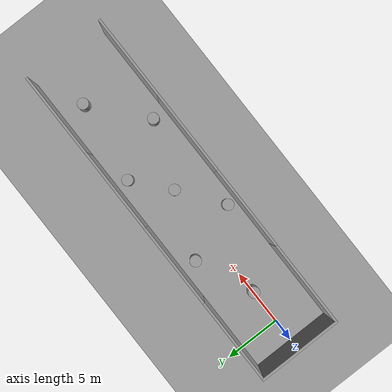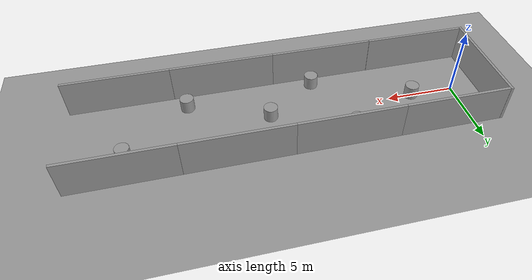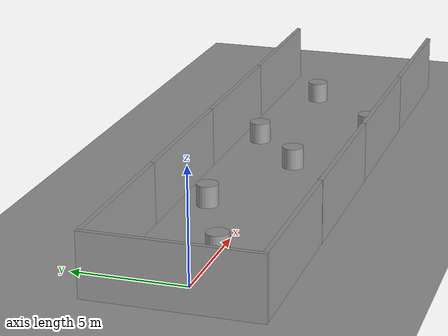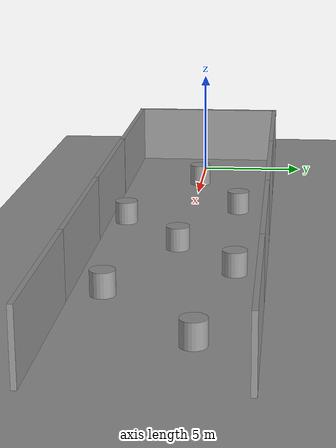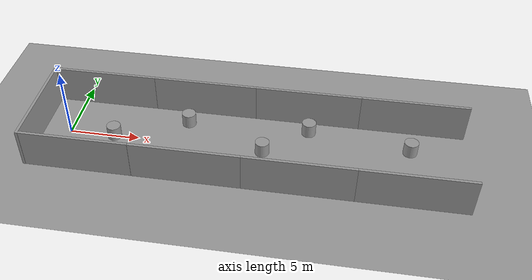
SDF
<sdf version="1.6">
 <world name="default">
  <light name="sun" type="directional">
   <pose>0 0 10 0 -0 0</pose>
   <diffuse>0.8 0.8 0.8 1</diffuse>
   <specular>0.1 0.1 0.1 1</specular>
   <attenuation>
    <range>1000</range>
    <constant>0.9</constant>
    <linear>0.01</linear>
    <quadratic>0.001</quadratic>
   </attenuation>
   <direction>-0.5 0.5 -1</direction>
  </light>
  <gravity>0 0 -9.8</gravity>
  <magnetic_field>6e-06 2.3e-05 -4.2e-05</magnetic_field>
  <atmosphere type="adiabatic"/>
  <physics name="default_physics" default="0" type="ode">
   <max_step_size>0.001</max_step_size>
   <real_time_factor>1</real_time_factor>
   <real_time_update_rate>1000</real_time_update_rate>
  </physics>
  <scene><ambient>0.4 0.4 0.4 1</ambient><background>0.7 0.7 0.7 1</background><shadows>1</shadows></scene>
  <spherical_coordinates>
   <surface_model>EARTH_WGS84</surface_model>
   <latitude_deg>0</latitude_deg>
   <longitude_deg>0</longitude_deg>
   <elevation>0</elevation>
   <heading_deg>0</heading_deg>
  </spherical_coordinates>
  <model name="grey_wall">
   <static>1</static>
   <link name="link">
    <pose>0 0 1.4 0 -0 0</pose>
    <collision name="collision"><geometry><box><size>7.5 0.2 2.8</size></box></geometry></collision>
    <visual name="visual">
     <cast_shadows>0</cast_shadows>
     <geometry><box><size>7.5 0.2 2.8</size></box></geometry>
     <material>
      <script>
       <uri>model://grey_wall/materials/scripts</uri>
       <uri>model://grey_wall/materials/textures</uri>
       <name>vrc/grey_wall</name>
      </script>
     </material>
    </visual>
   </link>
   <pose>1.74277 3.59908 0 0 -0 0</pose>
  </model>
  <model name="grey_wall_0">
   <static>1</static>
   <link name="link">
    <pose>0 0 1.4 0 -0 0</pose>
    <collision name="collision"><geometry><box><size>7.5 0.2 2.8</size></box></geometry></collision>
    <visual name="visual">
     <cast_shadows>0</cast_shadows>
     <geometry><box><size>7.5 0.2 2.8</size></box></geometry>
     <material>
      <script>
       <uri>model://grey_wall/materials/scripts</uri>
       <uri>model://grey_wall/materials/textures</uri>
       <name>vrc/grey_wall</name>
      </script>
     </material>
    </visual>
   </link>
   <pose>1.7816 -3.68174 0 0 -0 0</pose>
  </model>
  <model name="ground_plane_0">
   <static>1</static>
   <link name="link">
    <collision name="collision">
     <geometry><plane><normal>0 0 1</normal><size>100 100</size></plane></geometry>
     <surface><friction><ode><mu>100</mu><mu2>50</mu2></ode></friction></surface>
    </collision>
    <visual name="visual">
     <cast_shadows>0</cast_shadows>
     <geometry><plane><normal>0 0 1</normal><size>100 100</size></plane></geometry>
     <material>
      <script><uri>file://media/materials/scripts/gazebo.material</uri><name>Gazebo/Grey</name></script>
     </material>
    </visual>
   </link>
   <pose>-11.2455 -1.12521 0 0 -0 0</pose>
  </model>
  <model name="grey_wall_4">
   <static>1</static>
   <link name="link">
    <pose>0 0 1.4 0 -0 0</pose>
    <collision name="collision"><geometry><box><size>7.5 0.2 2.8</size></box></geometry></collision>
    <visual name="visual">
     <cast_shadows>0</cast_shadows>
     <geometry><box><size>7.5 0.2 2.8</size></box></geometry>
     <material>
      <script>
       <uri>model://grey_wall/materials/scripts</uri>
       <uri>model://grey_wall/materials/textures</uri>
       <name>vrc/grey_wall</name>
      </script>
     </material>
    </visual>
   </link>
   <pose>9.23902 3.60144 0 0 -0 0</pose>
  </model>
  <model name="grey_wall_5">
   <static>1</static>
   <link name="link">
    <pose>0 0 1.4 0 -0 0</pose>
    <collision name="collision"><geometry><box><size>7.5 0.2 2.8</size></box></geometry></collision>
    <visual name="visual">
     <cast_shadows>0</cast_shadows>
     <geometry><box><size>7.5 0.2 2.8</size></box></geometry>
     <material>
      <script>
       <uri>model://grey_wall/materials/scripts</uri>
       <uri>model://grey_wall/materials/textures</uri>
       <name>vrc/grey_wall</name>
      </script>
     </material>
    </visual>
   </link>
   <pose>9.29035 -3.69084 0 0 -0 0</pose>
  </model>
  <model name="grey_wall_6">
   <static>1</static>
   <link name="link">
    <pose>0 0 1.4 0 -0 0</pose>
    <collision name="collision"><geometry><box><size>7.5 0.2 2.8</size></box></geometry></collision>
    <visual name="visual">
     <cast_shadows>0</cast_shadows>
     <geometry><box><size>7.5 0.2 2.8</size></box></geometry>
     <material>
      <script>
       <uri>model://grey_wall/materials/scripts</uri>
       <uri>model://grey_wall/materials/textures</uri>
       <name>vrc/grey_wall</name>
      </script>
     </material>
    </visual>
   </link>
   <pose>16.7372 3.60255 0 0 -0 0</pose>
  </model>
  <model name="grey_wall_7">
   <static>1</static>
   <link name="link">
    <pose>0 0 1.4 0 -0 0</pose>
    <collision name="collision"><geometry><box><size>7.5 0.2 2.8</size></box></geometry></collision>
    <visual name="visual">
     <cast_shadows>0</cast_shadows>
     <geometry><box><size>7.5 0.2 2.8</size></box></geometry>
     <material>
      <script>
       <uri>model://grey_wall/materials/scripts</uri>
       <uri>model://grey_wall/materials/textures</uri>
       <name>vrc/grey_wall</name>
      </script>
     </material>
    </visual>
   </link>
   <pose>16.7822 -3.69163 0 0 -0 0</pose>
  </model>
  <model name="grey_wall_8">
   <static>1</static>
   <link name="link">
    <pose>0 0 1.4 0 -0 0</pose>
    <collision name="collision"><geometry><box><size>7.5 0.2 2.8</size></box></geometry></collision>
    <visual name="visual">
     <cast_shadows>0</cast_shadows>
     <geometry><box><size>7.5 0.2 2.8</size></box></geometry>
     <material>
      <script>
       <uri>model://grey_wall/materials/scripts</uri>
       <uri>model://grey_wall/materials/textures</uri>
       <name>vrc/grey_wall</name>
      </script>
     </material>
    </visual>
   </link>
   <pose>24.2326 3.60388 0 0 -0 0</pose>
  </model>
  <model name="grey_wall_9">
   <static>1</static>
   <link name="link">
    <pose>0 0 1.4 0 -0 0</pose>
    <collision name="collision"><geometry><box><size>7.5 0.2 2.8</size></box></geometry></collision>
    <visual name="visual">
     <cast_shadows>0</cast_shadows>
     <geometry><box><size>7.5 0.2 2.8</size></box></geometry>
     <material>
      <script>
       <uri>model://grey_wall/materials/scripts</uri>
       <uri>model://grey_wall/materials/textures</uri>
       <name>vrc/grey_wall</name>
      </script>
     </material>
    </visual>
   </link>
   <pose>-2.0788 -0.039101 0 0 0 -1.56563</pose>
  </model>
  <model name="grey_wall_10">
   <static>1</static>
   <link name="link">
    <pose>0 0 1.4 0 -0 0</pose>
    <collision name="collision"><geometry><box><size>7.5 0.2 2.8</size></box></geometry></collision>
    <visual name="visual">
     <cast_shadows>0</cast_shadows>
     <geometry><box><size>7.5 0.2 2.8</size></box></geometry>
     <material>
      <script>
       <uri>model://grey_wall/materials/scripts</uri>
       <uri>model://grey_wall/materials/textures</uri>
       <name>vrc/grey_wall</name>
      </script>
     </material>
    </visual>
   </link>
   <pose>24.2783 -3.69182 0 0 -0 0</pose>
  </model>
  <model name="unit_cylinder_0">
   <pose>3.25814 -0.034021 0.500786 0.001241 0.000981 0.530827</pose>
   <link name="link">
    <inertial>
     <mass>1</mass>
     <inertia><ixx>0.145833</ixx><ixy>0</ixy><ixz>0</ixz><iyy>0.145833</iyy><iyz>0</iyz><izz>0.125</izz></inertia>
    </inertial>
    <collision name="collision">
     <geometry><cylinder><radius>0.5</radius><length>1</length></cylinder></geometry>
    </collision>
    <visual name="visual">
     <geometry><cylinder><radius>0.5</radius><length>1</length></cylinder></geometry>
     <material>
      <script><name>Gazebo/Grey</name><uri>file://media/materials/scripts/gazebo.material</uri></script>
     </material>
    </visual>
   </link>
  </model>
  <model name="unit_cylinder_1">
   <pose>10.2714 -2.82639 0.499997 3e-06 -3e-06 0</pose>
   <link name="link">
    <inertial>
     <mass>1</mass>
     <inertia><ixx>0.145833</ixx><ixy>0</ixy><ixz>0</ixz><iyy>0.145833</iyy><iyz>0</iyz><izz>0.125</izz></inertia>
    </inertial>
    <collision name="collision">
     <geometry><cylinder><radius>0.5</radius><length>1</length></cylinder></geometry>
    </collision>
    <visual name="visual">
     <geometry><cylinder><radius>0.5</radius><length>1</length></cylinder></geometry>
     <material>
      <script><name>Gazebo/Grey</name><uri>file://media/materials/scripts/gazebo.material</uri></script>
     </material>
    </visual>
   </link>
  </model>
  <model name="unit_cylinder_2">
   <pose>16.9818 2.44526 0.50273 -0.004205 -0.003527 -0.181347</pose>
   <link name="link">
    <inertial>
     <mass>1</mass>
     <inertia><ixx>0.145833</ixx><ixy>0</ixy><ixz>0</ixz><iyy>0.145833</iyy><iyz>0</iyz><izz>0.125</izz></inertia>
    </inertial>
    <collision name="collision">
     <geometry><cylinder><radius>0.5</radius><length>1</length></cylinder></geometry>
    </collision>
    <visual name="visual">
     <geometry><cylinder><radius>0.5</radius><length>1</length></cylinder></geometry>
     <material>
      <script><name>Gazebo/Grey</name><uri>file://media/materials/scripts/gazebo.material</uri></script>
     </material>
    </visual>
   </link>
  </model>
  <model name="unit_cylinder_3">
   <pose>8.25699 2.15363 0.500387 0.000525 0.000577 -0.085788</pose>
   <link name="link">
    <inertial>
     <mass>1</mass>
     <inertia><ixx>0.145833</ixx><ixy>0</ixy><ixz>0</ixz><iyy>0.145833</iyy><iyz>0</iyz><izz>0.125</izz></inertia>
    </inertial>
    <collision name="collision">
     <geometry><cylinder><radius>0.5</radius><length>1</length></cylinder></geometry>
    </collision>
    <visual name="visual">
     <geometry><cylinder><radius>0.5</radius><length>1</length></cylinder></geometry>
     <material>
      <script><name>Gazebo/Grey</name><uri>file://media/materials/scripts/gazebo.material</uri></script>
     </material>
    </visual>
   </link>
  </model>
  <model name="unit_cylinder_4">
   <pose>13.9487 -0.104688 0.499992 -3e-06 4e-06 0.008606</pose>
   <link name="link">
    <inertial>
     <mass>1</mass>
     <inertia><ixx>0.145833</ixx><ixy>0</ixy><ixz>0</ixz><iyy>0.145833</iyy><iyz>0</iyz><izz>0.125</izz></inertia>
    </inertial>
    <collision name="collision">
     <geometry><cylinder><radius>0.5</radius><length>1</length></cylinder></geometry>
    </collision>
    <visual name="visual">
     <geometry><cylinder><radius>0.5</radius><length>1</length></cylinder></geometry>
     <material>
      <script><name>Gazebo/Grey</name><uri>file://media/materials/scripts/gazebo.material</uri></script>
     </material>
    </visual>
   </link>
  </model>
  <model name="unit_cylinder_5">
   <pose>19.6545 -2.35886 0.499998 3e-06 4e-06 -0</pose>
   <link name="link">
    <inertial>
     <mass>1</mass>
     <inertia><ixx>0.145833</ixx><ixy>0</ixy><ixz>0</ixz><iyy>0.145833</iyy><iyz>0</iyz><izz>0.125</izz></inertia>
    </inertial>
    <collision name="collision">
     <geometry><cylinder><radius>0.5</radius><length>1</length></cylinder></geometry>
    </collision>
    <visual name="visual">
     <geometry><cylinder><radius>0.5</radius><length>1</length></cylinder></geometry>
     <material>
      <script><name>Gazebo/Grey</name><uri>file://media/materials/scripts/gazebo.material</uri></script>
     </material>
    </visual>
   </link>
  </model>
  <model name="unit_cylinder_6">
   <pose>24.1807 1.45323 0.49999 0 -0 0.000199</pose>
   <link name="link">
    <inertial>
     <mass>1</mass>
     <inertia><ixx>0.145833</ixx><ixy>0</ixy><ixz>0</ixz><iyy>0.145833</iyy><iyz>0</iyz><izz>0.125</izz></inertia>
    </inertial>
    <collision name="collision">
     <geometry><cylinder><radius>0.5</radius><length>1</length></cylinder></geometry>
    </collision>
    <visual name="visual">
     <geometry><cylinder><radius>0.5</radius><length>1</length></cylinder></geometry>
     <material>
      <script><name>Gazebo/Grey</name><uri>file://media/materials/scripts/gazebo.material</uri></script>
     </material>
    </visual>
   </link>
  </model>
 </world>
</sdf>
